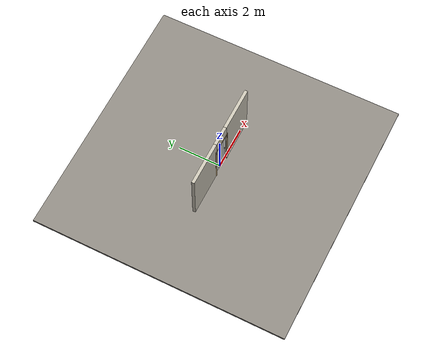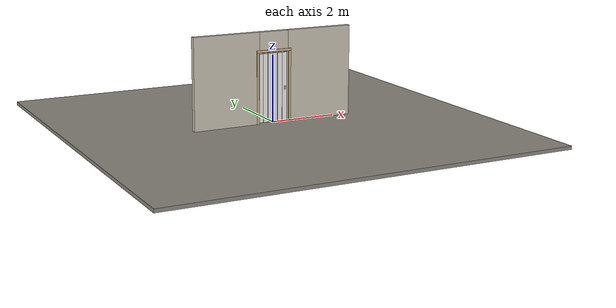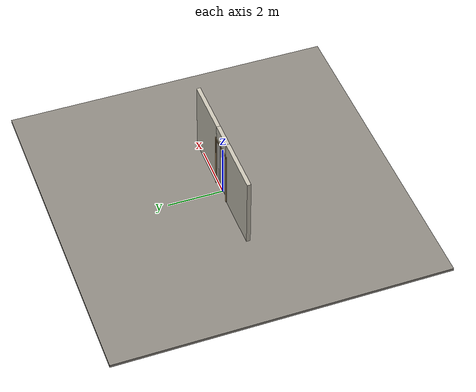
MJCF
<?xml version="1.0" ?>
<mujoco model="db0830_accordion_full">
  <compiler angle="radian" meshdir="../../hardware" texturedir="../../textures" autolimits="true" inertiafromgeom="false"/>
  <option timestep="0.002" integrator="implicitfast" cone="elliptic" impratio="10" noslip_iterations="3">
    <flag multiccd="enable"/>
  </option>
  <size memory="16M"/>
  <default>
    <geom condim="4" solref="0.005 1" solimp="0.95 0.99 0.001"/>
    <joint solreflimit="0.005 1" solimplimit="0.95 0.99 0.001"/>
    <tendon solreflimit="0.005 1"/>
    <equality solref="0.002 1"/>
  </default>
  <visual>
    <headlight ambient="0.4 0.4 0.4" diffuse="0.7 0.7 0.7" specular="0.2 0.2 0.2"/>
    <quality shadowsize="4096"/>
    <map znear="0.01" zfar="60"/>
  </visual>
  <asset>
    <material name="mat_floor" rgba="0.55 0.53 0.5 1" specular="0.2" shininess="0.15" reflectance="0"/>
    <material name="mat_wall" rgba="0.78 0.76 0.7 1" specular="0.2" shininess="0.1" reflectance="0"/>
    <material name="mat_frame" rgba="0.82 0.7 0.5 1" specular="0.2" shininess="0.45" reflectance="0"/>
    <material name="mat_track" rgba="0.8 0.81 0.83 1" specular="0.8" shininess="0.6" reflectance="0.4"/>
    <material name="mat_hinge" rgba="0.65 0.66 0.68 1" specular="0.74" shininess="0.5" reflectance="0.36"/>
    <material name="mat_panel_0_0" rgba="0.93 0.93 0.91 1" specular="0.2" shininess="0.35" reflectance="0"/>
    <material name="mat_panel_0_1" rgba="0.93 0.93 0.91 1" specular="0.2" shininess="0.35" reflectance="0"/>
    <material name="mat_panel_0_2" rgba="0.93 0.93 0.91 1" specular="0.2" shininess="0.35" reflectance="0"/>
    <material name="mat_panel_0_3" rgba="0.93 0.93 0.91 1" specular="0.2" shininess="0.35" reflectance="0"/>
    <material name="mat_panel_0_4" rgba="0.93 0.93 0.91 1" specular="0.2" shininess="0.35" reflectance="0"/>
    <material name="mat_panel_0_5" rgba="0.93 0.93 0.91 1" specular="0.2" shininess="0.35" reflectance="0"/>
    <material name="mat_op_nickel_satin" rgba="0.72 0.7 0.66 1" specular="0.8" shininess="0.65" reflectance="0.4"/>
    <texture name="skybox" type="skybox" builtin="gradient" rgb1="0.6 0.7 0.85" rgb2="0.9 0.92 0.95" width="256" height="256"/>
  </asset>
  <worldbody>
    <light name="sun" pos="1.5 -2.5 4" dir="-0.3 0.5 -0.8" directional="true" diffuse="0.8 0.8 0.8" specular="0.3 0.3 0.3" castshadow="true"/>
    <light name="fill" pos="-1.5 2.5 3" dir="0.3 -0.5 -0.7" directional="true" diffuse="0.35 0.35 0.4" castshadow="false"/>
    <camera name="robot_view" pos="0 -2.581563 1.766338" xyaxes="1 0 0 0 0.26963 0.962964" fovy="52"/>
    <camera name="far_view" pos="0 2.581563 1.766338" xyaxes="-1 0 0 0 -0.26963 0.962964" fovy="52"/>
    <camera name="iso" pos="1.961988 -2.168513 2.179388" xyaxes="0.741536 0.670913 0 -0.242917 0.268487 0.932151" fovy="46"/>
    <camera name="detail_handle" pos="0.5755 -0.806 1.28" xyaxes="0.97561 0.219512 0 -0.070934 0.315262 0.94635" fovy="38"/>
    <geom name="floor" type="box" size="6 6 0.05" pos="0 0 -0.05" material="mat_floor" group="0" contype="1" conaffinity="1" friction="0.8 0.005 0.0001" density="2400"/>
    <geom name="wall_left" type="box" size="1.01925 0.0725 1.35" pos="-1.48075 0 1.35" material="mat_wall" group="0" contype="1" conaffinity="1" friction="0.6 0.005 0.0001" density="800"/>
    <geom name="wall_right" type="box" size="1.01925 0.0725 1.35" pos="1.48075 0 1.35" material="mat_wall" group="0" contype="1" conaffinity="1" friction="0.6 0.005 0.0001" density="800"/>
    <geom name="wall_header" type="box" size="0.4615 0.0725 0.3065" pos="0 0 2.3935" material="mat_wall" group="0" contype="1" conaffinity="1" friction="0.6 0.005 0.0001" density="800"/>
    <geom name="jamb_hinge" type="box" size="0.0095 0.0725 1.0435" pos="-0.471 0 1.0435" material="mat_frame" group="0" contype="1" conaffinity="1" friction="0.6 0.005 0.0001" density="400"/>
    <geom name="jamb_strike" type="box" size="0.0095 0.0725 1.0435" pos="0.471 0 1.0435" material="mat_frame" group="0" contype="1" conaffinity="1" friction="0.6 0.005 0.0001" density="400"/>
    <geom name="stud_strike" type="box" size="0.015 0.0725 1.0435" pos="0.4955 0 1.0435" material="mat_wall" group="0" contype="1" conaffinity="1" friction="0.6 0.005 0.0001" density="500"/>
    <geom name="jamb_head" type="box" size="0.4955 0.0725 0.0095" pos="0.015 0 2.0965" material="mat_frame" group="0" contype="1" conaffinity="1" friction="0.6 0.005 0.0001" density="400"/>
    <geom name="head_stud" type="box" size="0.4955 0.0725 0.015" pos="0.015 0 2.121" material="mat_wall" group="0" contype="1" conaffinity="1" friction="0.6 0.005 0.0001" density="500"/>
    <geom name="casing_l_n" type="box" size="0.035 0.008 1.053" pos="-0.5105 -0.0805 1.0435" material="mat_frame" group="2" contype="0" conaffinity="0" density="400"/>
    <geom name="casing_r_n" type="box" size="0.035 0.008 1.053" pos="0.5105 -0.0805 1.0435" material="mat_frame" group="2" contype="0" conaffinity="0" density="400"/>
    <geom name="casing_h_n" type="box" size="0.5455 0.008 0.035" pos="0 -0.0805 2.136" material="mat_frame" group="2" contype="0" conaffinity="0" density="400"/>
    <geom name="casing_l_p" type="box" size="0.035 0.008 1.053" pos="-0.5105 0.0805 1.0435" material="mat_frame" group="2" contype="0" conaffinity="0" density="400"/>
    <geom name="casing_r_p" type="box" size="0.035 0.008 1.053" pos="0.5105 0.0805 1.0435" material="mat_frame" group="2" contype="0" conaffinity="0" density="400"/>
    <geom name="casing_h_p" type="box" size="0.5455 0.008 0.035" pos="0 0.0805 2.136" material="mat_frame" group="2" contype="0" conaffinity="0" density="400"/>
    <geom name="fold_track" type="box" size="0.4615 0.02 0.015" pos="0 0 2.072" material="mat_track" group="1" contype="0" conaffinity="0" density="2700"/>
    <site name="approach_point" pos="0 -1.5 0" quat="1 0 0 0" size="0.05" rgba="0.2 0.9 0.2 0.5" group="4"/>
    <site name="goal_point" pos="0 1.5 0" quat="1 0 0 0" size="0.05" rgba="0.2 0.9 0.2 0.5" group="4"/>
    <site name="door_plane_center" pos="0 0 1.0435" quat="1 0 0 0" size="0.02" rgba="0.2 0.9 0.2 0.5" group="4"/>
    <body name="panel_0_0" pos="-0.4615 0 0">
      <inertial pos="0.077142 0 1.044557" mass="4.612079" quat="0.499741 0.499741 -0.500259 0.500259" diaginertia="0.008136658 1.613428594 1.621454252"/>
      <joint name="panel_0_0_hinge" type="hinge" axis="0 0 -1" pos="0.035 0 0" limited="true" range="0 1.48353" damping="0.891842" frictionloss="4.564715" armature="0.02"/>
      <geom name="panel_0_0_slab" type="box" size="0.0725 0.006 1.016" pos="0.0775 0 1.036" material="mat_panel_0_0" group="0" contype="1" conaffinity="1" friction="0.4 0.005 0.0001" density="1"/>
      <geom name="panel_0_0_pivot_pin" type="cylinder" size="0.008 0.0105" pos="0.035 0 2.0525" material="mat_hinge" group="1" contype="0" conaffinity="0" density="7850"/>
      <body name="panel_0_1" pos="0.152 0 0">
        <inertial pos="0.000272 0.005979 1.036" mass="4.868653" quat="0.51478 -0.48477 0.51478 0.48477" diaginertia="0.000182038 1.642559752 1.642691954"/>
        <joint name="panel_0_1_hinge" type="hinge" axis="0 0 -1" pos="0 0.006 0" limited="true" range="-3.141593 0" damping="0.2" frictionloss="0.1" armature="0.005"/>
        <geom name="panel_0_1_slab" type="box" size="0.074 0.006 1.016" pos="0.076 0 1.036" material="mat_panel_0_1" group="0" contype="1" conaffinity="1" friction="0.4 0.005 0.0001" density="1"/>
        <geom name="panel_0_1_knuckle" type="cylinder" size="0.0045 1.006" pos="0 0.006 1.036" material="mat_hinge" group="1" contype="0" conaffinity="0" density="7850"/>
        <body name="panel_0_2" pos="0.152 0 0">
          <inertial pos="0.000272 -0.005979 1.036" mass="4.868653" quat="0.48477 -0.51478 0.48477 0.51478" diaginertia="0.000182038 1.642559752 1.642691954"/>
          <joint name="panel_0_2_hinge" type="hinge" axis="0 0 -1" pos="0 -0.006 0" limited="true" range="0 3.141593" damping="0.2" frictionloss="0.1" armature="0.005"/>
          <geom name="panel_0_2_slab" type="box" size="0.074 0.006 1.016" pos="0.076 0 1.036" material="mat_panel_0_2" group="0" contype="1" conaffinity="1" friction="0.4 0.005 0.0001" density="1"/>
          <geom name="panel_0_2_knuckle" type="cylinder" size="0.0045 1.006" pos="0 -0.006 1.036" material="mat_hinge" group="1" contype="0" conaffinity="0" density="7850"/>
          <body name="panel_0_3" pos="0.152 0 0">
            <inertial pos="0.000272 0.005979 1.036" mass="4.868653" quat="0.51478 -0.48477 0.51478 0.48477" diaginertia="0.000182038 1.642559752 1.642691954"/>
            <joint name="panel_0_3_hinge" type="hinge" axis="0 0 -1" pos="0 0.006 0" limited="true" range="-3.141593 0" damping="0.2" frictionloss="0.1" armature="0.005"/>
            <geom name="panel_0_3_slab" type="box" size="0.074 0.006 1.016" pos="0.076 0 1.036" material="mat_panel_0_3" group="0" contype="1" conaffinity="1" friction="0.4 0.005 0.0001" density="1"/>
            <geom name="panel_0_3_knuckle" type="cylinder" size="0.0045 1.006" pos="0 0.006 1.036" material="mat_hinge" group="1" contype="0" conaffinity="0" density="7850"/>
            <body name="panel_0_4" pos="0.152 0 0">
              <inertial pos="0.000272 -0.005979 1.036" mass="4.868653" quat="0.48477 -0.51478 0.48477 0.51478" diaginertia="0.000182038 1.642559752 1.642691954"/>
              <joint name="panel_0_4_hinge" type="hinge" axis="0 0 -1" pos="0 -0.006 0" limited="true" range="0 3.141593" damping="0.2" frictionloss="0.1" armature="0.005"/>
              <geom name="panel_0_4_slab" type="box" size="0.074 0.006 1.016" pos="0.076 0 1.036" material="mat_panel_0_4" group="0" contype="1" conaffinity="1" friction="0.4 0.005 0.0001" density="1"/>
              <geom name="panel_0_4_knuckle" type="cylinder" size="0.0045 1.006" pos="0 -0.006 1.036" material="mat_hinge" group="1" contype="0" conaffinity="0" density="7850"/>
              <body name="panel_0_5" pos="0.152 0 0">
                <inertial pos="0.000775 0.005916 1.035822" mass="5.097554" quat="0.474735 0.524072 0.474708 -0.524049" diaginertia="0.000452947 1.711360954 1.71176089"/>
                <joint name="panel_0_5_hinge" type="hinge" axis="0 0 -1" pos="0 0.006 0" limited="true" range="-3.141593 0" damping="0.2" frictionloss="0.1" armature="0.005"/>
                <geom name="panel_0_5_slab" type="box" size="0.0775 0.006 1.016" pos="0.0795 0 1.036" material="mat_panel_0_5" group="0" contype="1" conaffinity="1" friction="0.4 0.005 0.0001" density="1"/>
                <geom name="panel_0_5_knuckle" type="cylinder" size="0.0045 1.006" pos="0 0.006 1.036" material="mat_hinge" group="1" contype="0" conaffinity="0" density="7850"/>
                <geom name="panel_0_5_pull_n" type="box" size="0.025 0.0005 0.05" pos="0.097 -0.0065 1" material="mat_op_nickel_satin" group="1" contype="0" conaffinity="0" density="1000"/>
                <site name="panel_0_5_pull_grip_n" pos="0.097 -0.006 1" quat="1 0 0 0" size="0.012" rgba="0.2 0.9 0.2 0.5" group="4"/>
              </body>
            </body>
          </body>
        </body>
      </body>
    </body>
  </worldbody>
  <equality>
    <joint name="panel_0_1_couple" joint1="panel_0_1_hinge" joint2="panel_0_0_hinge" polycoef="0 -2 0 0 0" active="true"/>
    <joint name="panel_0_2_couple" joint1="panel_0_2_hinge" joint2="panel_0_0_hinge" polycoef="0 2 0 0 0" active="true"/>
    <joint name="panel_0_3_couple" joint1="panel_0_3_hinge" joint2="panel_0_0_hinge" polycoef="0 -2 0 0 0" active="true"/>
    <joint name="panel_0_4_couple" joint1="panel_0_4_hinge" joint2="panel_0_0_hinge" polycoef="0 2 0 0 0" active="true"/>
    <joint name="panel_0_5_couple" joint1="panel_0_5_hinge" joint2="panel_0_0_hinge" polycoef="0 -2 0 0 0" active="true"/>
  </equality>
  <sensor>
    <jointpos name="panel_0_0_hinge_pos" joint="panel_0_0_hinge"/>
    <jointvel name="panel_0_0_hinge_vel" joint="panel_0_0_hinge"/>
    <jointpos name="panel_0_1_hinge_pos" joint="panel_0_1_hinge"/>
    <jointvel name="panel_0_1_hinge_vel" joint="panel_0_1_hinge"/>
    <jointpos name="panel_0_2_hinge_pos" joint="panel_0_2_hinge"/>
    <jointvel name="panel_0_2_hinge_vel" joint="panel_0_2_hinge"/>
    <jointpos name="panel_0_3_hinge_pos" joint="panel_0_3_hinge"/>
    <jointvel name="panel_0_3_hinge_vel" joint="panel_0_3_hinge"/>
    <jointpos name="panel_0_4_hinge_pos" joint="panel_0_4_hinge"/>
    <jointvel name="panel_0_4_hinge_vel" joint="panel_0_4_hinge"/>
    <jointpos name="panel_0_5_hinge_pos" joint="panel_0_5_hinge"/>
    <jointvel name="panel_0_5_hinge_vel" joint="panel_0_5_hinge"/>
  </sensor>
</mujoco>
